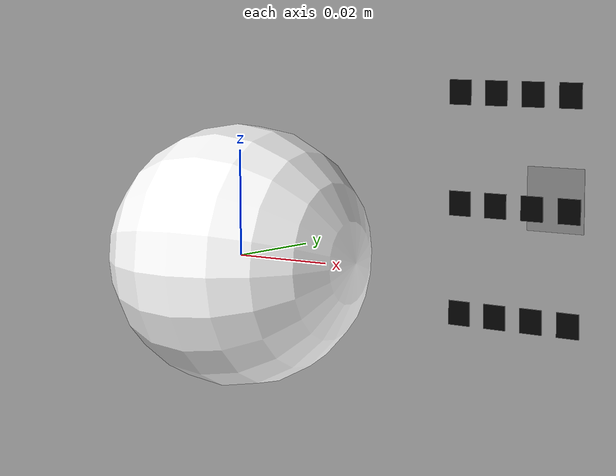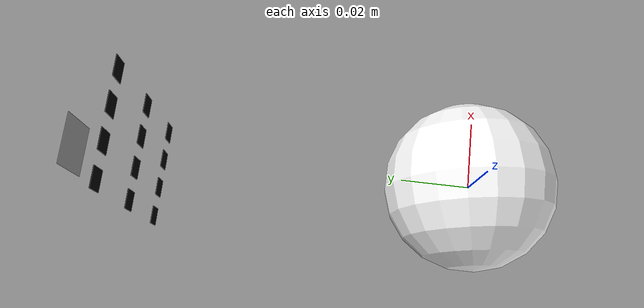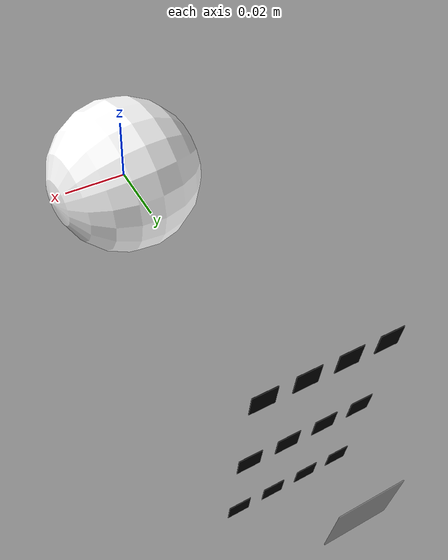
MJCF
<?xml version="1.0"?>
<mujoco>
    <compiler angle="radian"/>
    <option collision="all" timestep="0.002"/>
    <size njmax="1000" nconmax="400"/>
    <default class="main">
        <default class="head">
            <joint type="slide" stiffness="0.0" damping="0.5" armature="0.0" limited="true" range="0 1"/>
        </default>

        <default class="eye">
            <position ctrllimited="true" kp="5"/>
            <joint type="hinge" stiffness="0.0" damping="0.5" armature="0.0" limited="true"/>
        </default>

        <default class="smart-glass-grid">
            <geom type="box" size="0.0030 0.0001 0.0030" rgba="0 0 0 1"/>
        </default>

        <default class="background-grid">
            <geom type="box" size="0.008 0.0001 0.008" rgba="0.5 0.5 0.5 0.8"/>
        </default>
    </default>
    <asset>
        <texture type="skybox" builtin="gradient" rgb1="1 1 1" rgb2="0.6 0.8 1" width="256" height="256"/>
        <texture type="cube" name="blue-eye" file="assets/blue_eye_texture_circle.png" gridsize="3 4" gridlayout=".U..LFRB.D.."/>
        <material name="blue-eye" texture="blue-eye" texuniform="true"/>
        <mesh name="eye" file="assets/basic_eye_2.stl" scale="0.05 0.05 0.05"/>
    </asset>
    <worldbody>
        <light name="scene_directional_light" directional="true" castshadow="false" cutoff="4" exponent="20"
               diffuse="1 1 1" specular="0 0 0" pos=".9 .3 2.5"/>

        <camera name="env" pos="0.35 -0.35 0.15" euler="1.4 0.5 0.12"/>

        <body name="head" pos="0 0 0">
            <body name="eye" pos="0 0 0" quat="0.7071068 0.7071068 0 0">
                <geom name="eye" type="sphere" size="0.025" material="blue-eye" rgba="1 1 1 1" quat="0.6625191 0.0130711 0.7488417 0.0115643"/>
                <camera name="eye" fovy="90"/>
                <joint name="eye-joint-x" class="eye" axis="1 0 0" range="-1.0 1.0"/>
                <joint name="eye-joint-y" class="eye" axis="0 1 0" range="-1.0 1.0"/>
                <site name="rangefinder-site" quat="0 0 1 0"/>
            </body>

            <body name="smart-glass-pane-interline-spacing-100" pos="0 0.10 0">
                <geom name="grid-1" pos="-0.015 0 0.0268" class="smart-glass-grid"/>
                <geom name="grid-2" pos="-0.005 0 0.0268" class="smart-glass-grid"/>
                <geom name="grid-3" pos="0.005 0 0.0268" class="smart-glass-grid"/>
                <geom name="grid-4" pos="0.015 0 0.0268" class="smart-glass-grid"/>

                <geom name="grid-5" pos="-0.015 0 0" class="smart-glass-grid"/>
                <geom name="grid-6" pos="-0.005 0 0" class="smart-glass-grid"/>
                <geom name="grid-7" pos="0.005 0 0" class="smart-glass-grid"/>
                <geom name="grid-8" pos="0.015 0 0" class="smart-glass-grid"/>

                <geom name="grid-9" pos="-0.015 0 -0.0268" class="smart-glass-grid"/>
                <geom name="grid-10" pos="-0.005 0 -0.0268" class="smart-glass-grid"/>
                <geom name="grid-11" pos="0.005 0 -0.0268" class="smart-glass-grid"/>
                <geom name="grid-12" pos="0.015 0 -0.0268" class="smart-glass-grid"/>
            </body>

            <joint name="head-joint-y" class="head" axis="0 1 0" />
            <joint name="head-joint-x" class="head" axis="1 0 0" />
        </body>

        <body name="background-pane" pos="0 0.12 0">
            <geom name="grid-bgp" pos="-0 0 0" class="background-grid"/>
        </body>

    </worldbody>
    <actuator>
        <position name="eye-x-motor" joint="eye-joint-x" class="eye" ctrlrange="-1.0 1.0"/>
        <position name="eye-y-motor" joint="eye-joint-y" class="eye" ctrlrange="-1.0 1.0"/>
    </actuator>
    <sensor>
        <rangefinder name="rangefinder" site="rangefinder-site"/>
    </sensor>
</mujoco>
